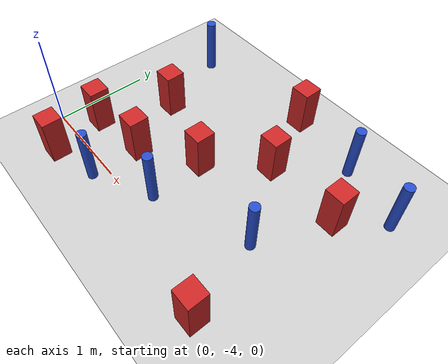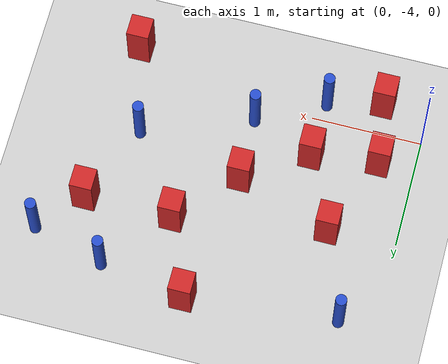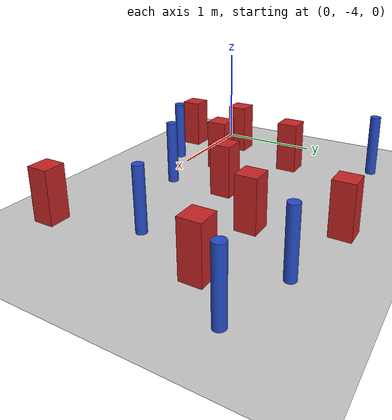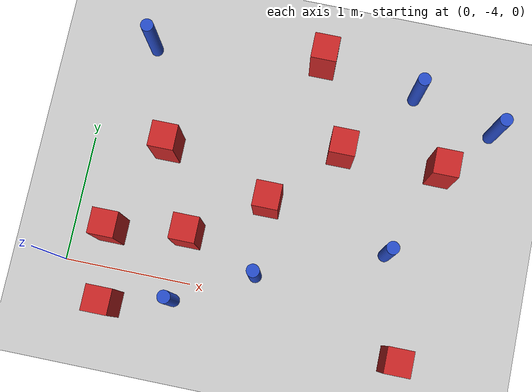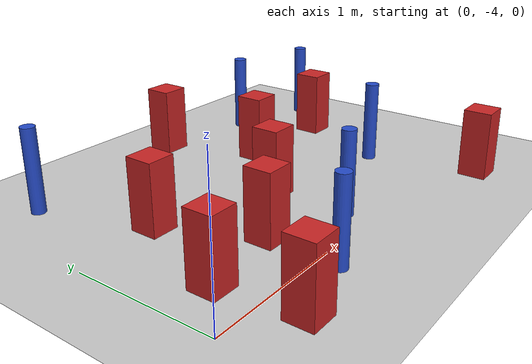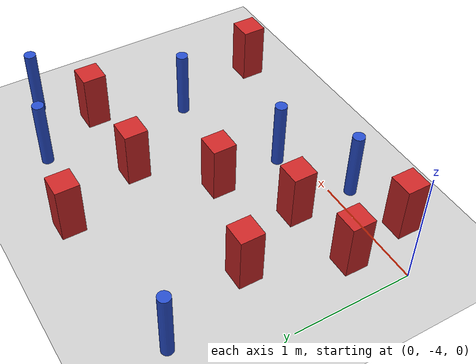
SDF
<sdf version="1.6">
 <world name="default">
  <model name="ground_plane">
   <static>1</static>
   <link name="link">
    <collision name="collision">
     <geometry><plane><normal>0 0 1</normal><size>100 100</size></plane></geometry>
     <surface><friction><ode><mu>100</mu><mu2>50</mu2></ode></friction></surface>
    </collision>
    <visual name="visual">
     <cast_shadows>0</cast_shadows>
     <geometry><plane><normal>0 0 1</normal><size>100 100</size></plane></geometry>
     <material>
      <ambient>1.0 1.0 1.0 1.0</ambient>
      <diffuse>0.8 0.8 0.8 1.0</diffuse>
      <specular>0.01 0.01 0.01 1.000000</specular>
     </material>
    </visual>
   </link>
  </model>
  <model name="pole_obstacle37">
   <static>true</static>
   <pose>1.49256825739 -3.83548454212 2.88873142074e-08 -9.90536689791e-09 4.6021994899e-07 -1.20965994959e-07</pose>
   <link name="link">
    <pose>0 0 0.3 0 -0 0</pose>
    <inertial>
     <mass>1</mass>
     <inertia><ixx>0.145833</ixx><ixy>0</ixy><ixz>0</ixz><iyy>0.145833</iyy><iyz>0</iyz><izz>0.125</izz></inertia>
    </inertial>
    <collision name="collision">
     <geometry><cylinder><radius>0.05</radius><length>.6</length></cylinder></geometry>
    </collision>
    <visual name="visual">
     <geometry><cylinder><radius>0.05</radius><length>.6</length></cylinder></geometry>
     <material>
      <script><name>Gazebo/Blue</name><uri>file://media/materials/scripts/gazebo.material</uri></script>
     </material>
    </visual>
   </link>
  </model>
  <model name="square_post_obstacle41">
   <static>true</static>
   <pose>2.66151567636 -4.26531768312 8.22691968438e-08 7.2212513382e-06 -7.54495500217e-07 2.29674213826e-05</pose>
   <link name="link">
    <pose>0 0 0.25 0 -0 0</pose>
    <inertial>
     <mass>100</mass>
     <inertia>
      <ixx>0.166667</ixx>
      <ixy>0</ixy>
      <ixz>0</ixz>
      <iyy>0.166667</iyy>
      <iyz>0</iyz>
      <izz>0.166667</izz>
     </inertia>
    </inertial>
    <collision name="collision"><geometry><box><size>.2 .2 .5</size></box></geometry></collision>
    <visual name="visual">
     <geometry><box><size>.2 .2 .5</size></box></geometry>
     <material>
      <script><name>Gazebo/Red</name><uri>file://media/materials/scripts/gazebo.material</uri></script>
     </material>
    </visual>
   </link>
  </model>
  <model name="square_post_obstacle53">
   <static>true</static>
   <pose>0.409191091233 -4.26448317062 8.22691968438e-08 7.2212513382e-06 -7.54495500217e-07 2.29674213826e-05</pose>
   <link name="link">
    <pose>0 0 0.25 0 -0 0</pose>
    <inertial>
     <mass>100</mass>
     <inertia>
      <ixx>0.166667</ixx>
      <ixy>0</ixy>
      <ixz>0</ixz>
      <iyy>0.166667</iyy>
      <iyz>0</iyz>
      <izz>0.166667</izz>
     </inertia>
    </inertial>
    <collision name="collision"><geometry><box><size>.2 .2 .5</size></box></geometry></collision>
    <visual name="visual">
     <geometry><box><size>.2 .2 .5</size></box></geometry>
     <material>
      <script><name>Gazebo/Red</name><uri>file://media/materials/scripts/gazebo.material</uri></script>
     </material>
    </visual>
   </link>
  </model>
  <model name="square_post_obstacle54">
   <static>true</static>
   <pose>1.96035430319 -2.73951562965 8.22691968438e-08 7.2212513382e-06 -7.54495500217e-07 2.29674213826e-05</pose>
   <link name="link">
    <pose>0 0 0.25 0 -0 0</pose>
    <inertial>
     <mass>100</mass>
     <inertia>
      <ixx>0.166667</ixx>
      <ixy>0</ixy>
      <ixz>0</ixz>
      <iyy>0.166667</iyy>
      <iyz>0</iyz>
      <izz>0.166667</izz>
     </inertia>
    </inertial>
    <collision name="collision"><geometry><box><size>.2 .2 .5</size></box></geometry></collision>
    <visual name="visual">
     <geometry><box><size>.2 .2 .5</size></box></geometry>
     <material>
      <script><name>Gazebo/Red</name><uri>file://media/materials/scripts/gazebo.material</uri></script>
     </material>
    </visual>
   </link>
  </model>
  <model name="square_post_obstacle82">
   <static>true</static>
   <pose>0.323759396183 -3.70126716959 8.22691968438e-08 7.22125133819e-06 -7.54495500217e-07 2.29674213826e-05</pose>
   <link name="link">
    <pose>0 0 0.25 0 -0 0</pose>
    <inertial>
     <mass>100</mass>
     <inertia>
      <ixx>0.166667</ixx>
      <ixy>0</ixy>
      <ixz>0</ixz>
      <iyy>0.166667</iyy>
      <iyz>0</iyz>
      <izz>0.166667</izz>
     </inertia>
    </inertial>
    <collision name="collision"><geometry><box><size>.2 .2 .5</size></box></geometry></collision>
    <visual name="visual">
     <geometry><box><size>.2 .2 .5</size></box></geometry>
     <material>
      <script><name>Gazebo/Red</name><uri>file://media/materials/scripts/gazebo.material</uri></script>
     </material>
    </visual>
   </link>
  </model>
  <model name="square_post_obstacle94">
   <static>true</static>
   <pose>1.47545033394 -3.25435996841 8.22691968438e-08 7.2212513382e-06 -7.54495500217e-07 2.29674213826e-05</pose>
   <link name="link">
    <pose>0 0 0.25 0 -0 0</pose>
    <inertial>
     <mass>100</mass>
     <inertia>
      <ixx>0.166667</ixx>
      <ixy>0</ixy>
      <ixz>0</ixz>
      <iyy>0.166667</iyy>
      <iyz>0</iyz>
      <izz>0.166667</izz>
     </inertia>
    </inertial>
    <collision name="collision"><geometry><box><size>.2 .2 .5</size></box></geometry></collision>
    <visual name="visual">
     <geometry><box><size>.2 .2 .5</size></box></geometry>
     <material>
      <script><name>Gazebo/Red</name><uri>file://media/materials/scripts/gazebo.material</uri></script>
     </material>
    </visual>
   </link>
  </model>
  <model name="square_post_obstacle117">
   <static>true</static>
   <pose>0.613677046127 -2.96693166653 8.22691968438e-08 7.2212513382e-06 -7.54495500217e-07 2.29674213826e-05</pose>
   <link name="link">
    <pose>0 0 0.25 0 -0 0</pose>
    <inertial>
     <mass>100</mass>
     <inertia>
      <ixx>0.166667</ixx>
      <ixy>0</ixy>
      <ixz>0</ixz>
      <iyy>0.166667</iyy>
      <iyz>0</iyz>
      <izz>0.166667</izz>
     </inertia>
    </inertial>
    <collision name="collision"><geometry><box><size>.2 .2 .5</size></box></geometry></collision>
    <visual name="visual">
     <geometry><box><size>.2 .2 .5</size></box></geometry>
     <material>
      <script><name>Gazebo/Red</name><uri>file://media/materials/scripts/gazebo.material</uri></script>
     </material>
    </visual>
   </link>
  </model>
  <model name="pole_obstacle153">
   <static>true</static>
   <pose>2.45686270956 -3.46935712205 2.88873142074e-08 -9.90536690232e-09 4.6021994898e-07 -1.20965994968e-07</pose>
   <link name="link">
    <pose>0 0 0.3 0 -0 0</pose>
    <inertial>
     <mass>1</mass>
     <inertia><ixx>0.145833</ixx><ixy>0</ixy><ixz>0</ixz><iyy>0.145833</iyy><iyz>0</iyz><izz>0.125</izz></inertia>
    </inertial>
    <collision name="collision">
     <geometry><cylinder><radius>0.05</radius><length>.6</length></cylinder></geometry>
    </collision>
    <visual name="visual">
     <geometry><cylinder><radius>0.05</radius><length>.6</length></cylinder></geometry>
     <material>
      <script><name>Gazebo/Blue</name><uri>file://media/materials/scripts/gazebo.material</uri></script>
     </material>
    </visual>
   </link>
  </model>
  <model name="pole_obstacle154">
   <static>true</static>
   <pose>2.45753040304 -2.17624361003 2.88873142074e-08 -9.90536690232e-09 4.6021994898e-07 -1.20965994968e-07</pose>
   <link name="link">
    <pose>0 0 0.3 0 -0 0</pose>
    <inertial>
     <mass>1</mass>
     <inertia><ixx>0.145833</ixx><ixy>0</ixy><ixz>0</ixz><iyy>0.145833</iyy><iyz>0</iyz><izz>0.125</izz></inertia>
    </inertial>
    <collision name="collision">
     <geometry><cylinder><radius>0.05</radius><length>.6</length></cylinder></geometry>
    </collision>
    <visual name="visual">
     <geometry><cylinder><radius>0.05</radius><length>.6</length></cylinder></geometry>
     <material>
      <script><name>Gazebo/Blue</name><uri>file://media/materials/scripts/gazebo.material</uri></script>
     </material>
    </visual>
   </link>
  </model>
  <model name="square_post_obstacle160">
   <static>true</static>
   <pose>1.68228364559 -2.04552805866 8.22691968438e-08 7.2212513382e-06 -7.54495500217e-07 2.29674213826e-05</pose>
   <link name="link">
    <pose>0 0 0.25 0 -0 0</pose>
    <inertial>
     <mass>100</mass>
     <inertia>
      <ixx>0.166667</ixx>
      <ixy>0</ixy>
      <ixz>0</ixz>
      <iyy>0.166667</iyy>
      <iyz>0</iyz>
      <izz>0.166667</izz>
     </inertia>
    </inertial>
    <collision name="collision"><geometry><box><size>.2 .2 .5</size></box></geometry></collision>
    <visual name="visual">
     <geometry><box><size>.2 .2 .5</size></box></geometry>
     <material>
      <script><name>Gazebo/Red</name><uri>file://media/materials/scripts/gazebo.material</uri></script>
     </material>
    </visual>
   </link>
  </model>
  <model name="pole_obstacle186">
   <static>true</static>
   <pose>3.10794724278 -2.3611027191 2.88873142074e-08 -9.90536690232e-09 4.6021994898e-07 -1.20965994968e-07</pose>
   <link name="link">
    <pose>0 0 0.3 0 -0 0</pose>
    <inertial>
     <mass>1</mass>
     <inertia><ixx>0.145833</ixx><ixy>0</ixy><ixz>0</ixz><iyy>0.145833</iyy><iyz>0</iyz><izz>0.125</izz></inertia>
    </inertial>
    <collision name="collision">
     <geometry><cylinder><radius>0.05</radius><length>.6</length></cylinder></geometry>
    </collision>
    <visual name="visual">
     <geometry><cylinder><radius>0.05</radius><length>.6</length></cylinder></geometry>
     <material>
      <script><name>Gazebo/Blue</name><uri>file://media/materials/scripts/gazebo.material</uri></script>
     </material>
    </visual>
   </link>
  </model>
  <model name="square_post_obstacle180">
   <static>true</static>
   <pose>0.921096558683 -3.61901471808 8.22691968438e-08 7.2212513382e-06 -7.54495500217e-07 2.29674213826e-05</pose>
   <link name="link">
    <pose>0 0 0.25 0 -0 0</pose>
    <inertial>
     <mass>100</mass>
     <inertia>
      <ixx>0.166667</ixx>
      <ixy>0</ixy>
      <ixz>0</ixz>
      <iyy>0.166667</iyy>
      <iyz>0</iyz>
      <izz>0.166667</izz>
     </inertia>
    </inertial>
    <collision name="collision"><geometry><box><size>.2 .2 .5</size></box></geometry></collision>
    <visual name="visual">
     <geometry><box><size>.2 .2 .5</size></box></geometry>
     <material>
      <script><name>Gazebo/Red</name><uri>file://media/materials/scripts/gazebo.material</uri></script>
     </material>
    </visual>
   </link>
  </model>
  <model name="square_post_obstacle184">
   <static>true</static>
   <pose>2.75269533262 -2.74299284364 8.22691968438e-08 7.2212513382e-06 -7.54495500217e-07 2.29674213826e-05</pose>
   <link name="link">
    <pose>0 0 0.25 0 -0 0</pose>
    <inertial>
     <mass>100</mass>
     <inertia>
      <ixx>0.166667</ixx>
      <ixy>0</ixy>
      <ixz>0</ixz>
      <iyy>0.166667</iyy>
      <iyz>0</iyz>
      <izz>0.166667</izz>
     </inertia>
    </inertial>
    <collision name="collision"><geometry><box><size>.2 .2 .5</size></box></geometry></collision>
    <visual name="visual">
     <geometry><box><size>.2 .2 .5</size></box></geometry>
     <material>
      <script><name>Gazebo/Red</name><uri>file://media/materials/scripts/gazebo.material</uri></script>
     </material>
    </visual>
   </link>
  </model>
  <model name="pole_obstacle202">
   <static>true</static>
   <pose>0.327133009133 -2.18205997959 2.88873142074e-08 -9.90536689663e-09 4.60219948993e-07 -1.20965994959e-07</pose>
   <link name="link">
    <pose>0 0 0.3 0 -0 0</pose>
    <inertial>
     <mass>1</mass>
     <inertia><ixx>0.145833</ixx><ixy>0</ixy><ixz>0</ixz><iyy>0.145833</iyy><iyz>0</iyz><izz>0.125</izz></inertia>
    </inertial>
    <collision name="collision">
     <geometry><cylinder><radius>0.05</radius><length>.6</length></cylinder></geometry>
    </collision>
    <visual name="visual">
     <geometry><cylinder><radius>0.05</radius><length>.6</length></cylinder></geometry>
     <material>
      <script><name>Gazebo/Blue</name><uri>file://media/materials/scripts/gazebo.material</uri></script>
     </material>
    </visual>
   </link>
  </model>
  <model name="pole_obstacle204">
   <static>true</static>
   <pose>0.901740009133 -4.14849997959 2.88873142074e-08 -9.90536689661e-09 4.60219948993e-07 -1.20965994957e-07</pose>
   <link name="link">
    <pose>0 0 0.3 0 -0 0</pose>
    <inertial>
     <mass>1</mass>
     <inertia><ixx>0.145833</ixx><ixy>0</ixy><ixz>0</ixz><iyy>0.145833</iyy><iyz>0</iyz><izz>0.125</izz></inertia>
    </inertial>
    <collision name="collision">
     <geometry><cylinder><radius>0.05</radius><length>.6</length></cylinder></geometry>
    </collision>
    <visual name="visual">
     <geometry><cylinder><radius>0.05</radius><length>.6</length></cylinder></geometry>
     <material>
      <script><name>Gazebo/Blue</name><uri>file://media/materials/scripts/gazebo.material</uri></script>
     </material>
    </visual>
   </link>
  </model>
 </world>
</sdf>
